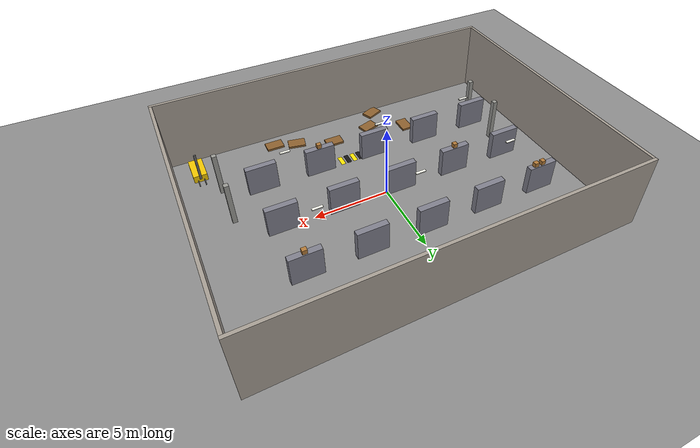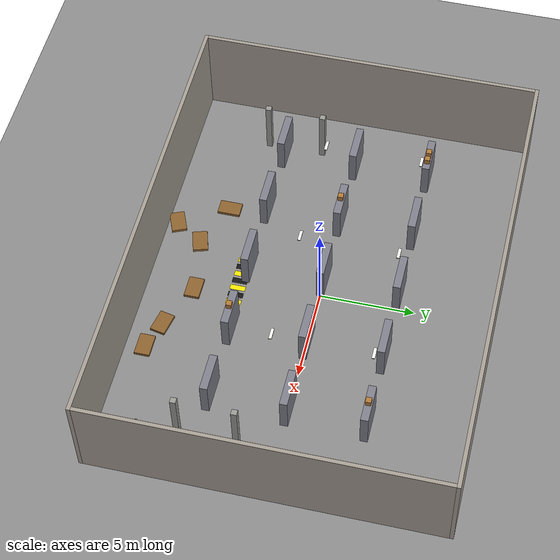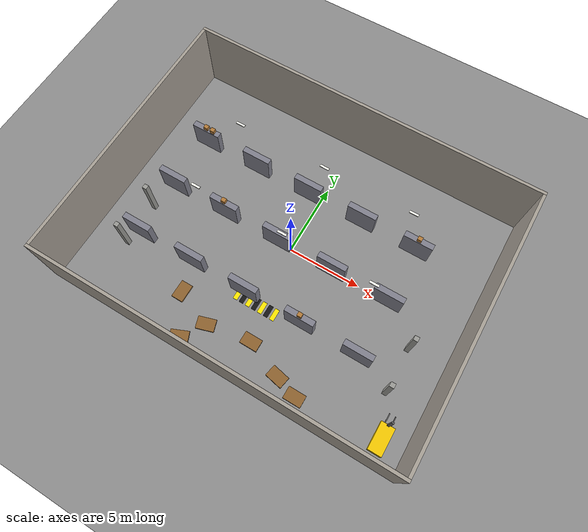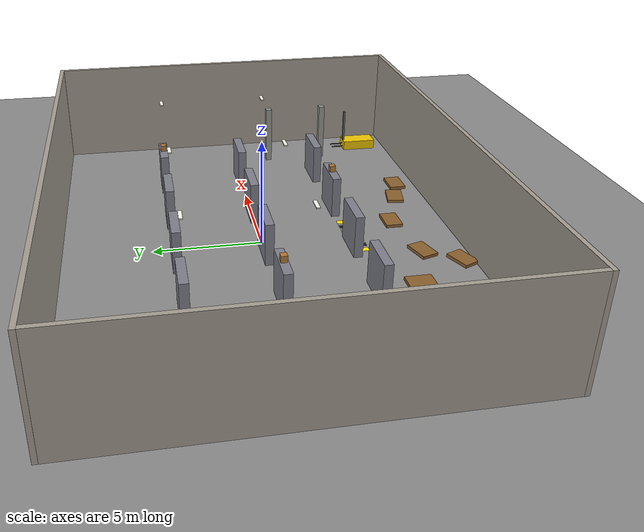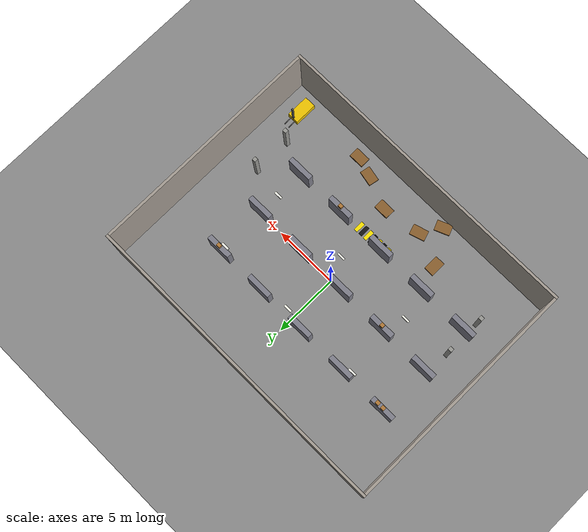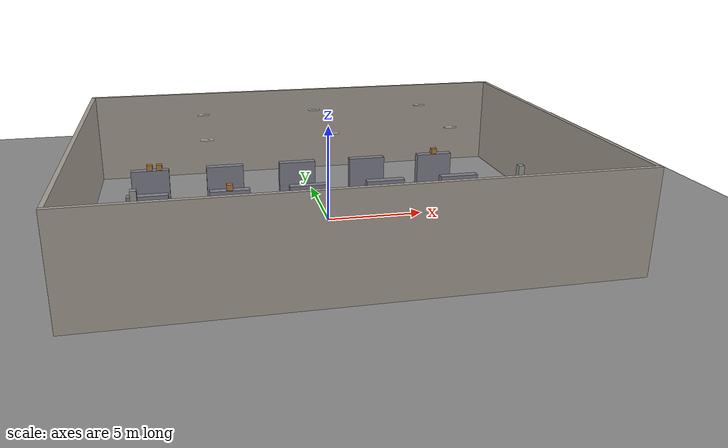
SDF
<sdf version="1.10">
 <world name="warehouse">
  <physics name="default_physics" default="true" type="ode">
   <max_step_size>0.001</max_step_size>
   <real_time_factor>1.0</real_time_factor>
   <real_time_update_rate>1000</real_time_update_rate>
  </physics>
  <plugin filename="gz-sim-physics-system" name="gz::sim::systems::Physics"/>
  <plugin filename="gz-sim-sensors-system" name="gz::sim::systems::Sensors">
   <render_engine>ogre2</render_engine>
  </plugin>
  <plugin filename="gz-sim-scene-broadcaster-system" name="gz::sim::systems::SceneBroadcaster"/>
  <plugin filename="gz-sim-user-commands-system" name="gz::sim::systems::UserCommands"/>
  <plugin filename="gz-sim-imu-system" name="gz::sim::systems::Imu"/>
  <scene>
   <ambient>0.3 0.3 0.35 1</ambient>
   <background>0.55 0.58 0.62 1</background>
   <shadows>true</shadows>
   <sky><clouds><speed>10</speed></clouds></sky>
  </scene>
  <light name="sun" type="directional">
   <pose>0 0 20 0 0.6 0.8</pose>
   <diffuse>0.85 0.85 0.80 1</diffuse>
   <specular>0.15 0.15 0.15 1</specular>
   <direction>-0.5 0.2 -0.9</direction>
   <attenuation>
    <range>1000</range>
    <constant>0.9</constant>
    <linear>0.01</linear>
    <quadratic>0.001</quadratic>
   </attenuation>
  </light>
  <model name="ground_plane">
   <static>true</static>
   <link name="link">
    <collision name="collision">
     <geometry><plane><normal>0 0 1</normal><size>30 25</size></plane></geometry>
     <surface><friction><ode><mu>0.8</mu><mu2>0.8</mu2></ode></friction></surface>
    </collision>
    <visual name="visual">
     <geometry><plane><normal>0 0 1</normal><size>30 25</size></plane></geometry>
     <material>
      <ambient>0.45 0.45 0.45 1</ambient>
      <diffuse>0.55 0.55 0.55 1</diffuse>
      <specular>0.05 0.05 0.05 1</specular>
     </material>
    </visual>
   </link>
  </model>
  <model name="wall_north">
   <static>true</static>
   <pose>0 9.1 2.5 0 0 0</pose>
   <link name="link">
    <collision name="col"><geometry><box><size>24.4 0.2 5.0</size></box></geometry></collision>
    <visual name="vis">
     <geometry><box><size>24.4 0.2 5.0</size></box></geometry>
     <material><ambient>0.5 0.48 0.45 1</ambient><diffuse>0.65 0.62 0.58 1</diffuse></material>
    </visual>
   </link>
  </model>
  <model name="wall_south">
   <static>true</static>
   <pose>0 -9.1 2.5 0 0 0</pose>
   <link name="link">
    <collision name="col"><geometry><box><size>24.4 0.2 5.0</size></box></geometry></collision>
    <visual name="vis">
     <geometry><box><size>24.4 0.2 5.0</size></box></geometry>
     <material><ambient>0.5 0.48 0.45 1</ambient><diffuse>0.65 0.62 0.58 1</diffuse></material>
    </visual>
   </link>
  </model>
  <model name="wall_east">
   <static>true</static>
   <pose>12.1 0 2.5 0 0 0</pose>
   <link name="link">
    <collision name="col"><geometry><box><size>0.2 18.0 5.0</size></box></geometry></collision>
    <visual name="vis">
     <geometry><box><size>0.2 18.0 5.0</size></box></geometry>
     <material><ambient>0.5 0.48 0.45 1</ambient><diffuse>0.65 0.62 0.58 1</diffuse></material>
    </visual>
   </link>
  </model>
  <model name="wall_west">
   <static>true</static>
   <pose>-12.1 0 2.5 0 0 0</pose>
   <link name="link">
    <collision name="col"><geometry><box><size>0.2 18.0 5.0</size></box></geometry></collision>
    <visual name="vis">
     <geometry><box><size>0.2 18.0 5.0</size></box></geometry>
     <material><ambient>0.5 0.48 0.45 1</ambient><diffuse>0.65 0.62 0.58 1</diffuse></material>
    </visual>
   </link>
  </model>
  <model name="shelf_r1_0">
   <static>true</static>
   <pose>-9 4.0 1.0 0 0 0</pose>
   <link name="l">
    <collision name="c"><geometry><box><size>2.0 0.4 2.0</size></box></geometry></collision>
    <visual name="v">
     <geometry><box><size>2.0 0.4 2.0</size></box></geometry>
     <material>
      <ambient>0.35 0.35 0.38 1</ambient>
      <diffuse>0.50 0.50 0.55 1</diffuse>
      <specular>0.3 0.3 0.3 1</specular>
     </material>
    </visual>
   </link>
  </model>
  <model name="shelf_r1_1">
   <static>true</static>
   <pose>-5 4.0 1.0 0 0 0</pose>
   <link name="l">
    <collision name="c"><geometry><box><size>2.0 0.4 2.0</size></box></geometry></collision>
    <visual name="v">
     <geometry><box><size>2.0 0.4 2.0</size></box></geometry>
     <material>
      <ambient>0.35 0.35 0.38 1</ambient>
      <diffuse>0.50 0.50 0.55 1</diffuse>
      <specular>0.3 0.3 0.3 1</specular>
     </material>
    </visual>
   </link>
  </model>
  <model name="shelf_r1_2">
   <static>true</static>
   <pose>-1 4.0 1.0 0 0 0</pose>
   <link name="l">
    <collision name="c"><geometry><box><size>2.0 0.4 2.0</size></box></geometry></collision>
    <visual name="v">
     <geometry><box><size>2.0 0.4 2.0</size></box></geometry>
     <material>
      <ambient>0.35 0.35 0.38 1</ambient>
      <diffuse>0.50 0.50 0.55 1</diffuse>
      <specular>0.3 0.3 0.3 1</specular>
     </material>
    </visual>
   </link>
  </model>
  <model name="shelf_r1_3">
   <static>true</static>
   <pose>3 4.0 1.0 0 0 0</pose>
   <link name="l">
    <collision name="c"><geometry><box><size>2.0 0.4 2.0</size></box></geometry></collision>
    <visual name="v">
     <geometry><box><size>2.0 0.4 2.0</size></box></geometry>
     <material>
      <ambient>0.35 0.35 0.38 1</ambient>
      <diffuse>0.50 0.50 0.55 1</diffuse>
      <specular>0.3 0.3 0.3 1</specular>
     </material>
    </visual>
   </link>
  </model>
  <model name="shelf_r1_4">
   <static>true</static>
   <pose>7 4.0 1.0 0 0 0</pose>
   <link name="l">
    <collision name="c"><geometry><box><size>2.0 0.4 2.0</size></box></geometry></collision>
    <visual name="v">
     <geometry><box><size>2.0 0.4 2.0</size></box></geometry>
     <material>
      <ambient>0.35 0.35 0.38 1</ambient>
      <diffuse>0.50 0.50 0.55 1</diffuse>
      <specular>0.3 0.3 0.3 1</specular>
     </material>
    </visual>
   </link>
  </model>
  <model name="shelf_r2_0">
   <static>true</static>
   <pose>-9 0.0 1.0 0 0 0</pose>
   <link name="l">
    <collision name="c"><geometry><box><size>2.0 0.4 2.0</size></box></geometry></collision>
    <visual name="v">
     <geometry><box><size>2.0 0.4 2.0</size></box></geometry>
     <material>
      <ambient>0.35 0.35 0.38 1</ambient>
      <diffuse>0.50 0.50 0.55 1</diffuse>
      <specular>0.3 0.3 0.3 1</specular>
     </material>
    </visual>
   </link>
  </model>
  <model name="shelf_r2_1">
   <static>true</static>
   <pose>-5 0.0 1.0 0 0 0</pose>
   <link name="l">
    <collision name="c"><geometry><box><size>2.0 0.4 2.0</size></box></geometry></collision>
    <visual name="v">
     <geometry><box><size>2.0 0.4 2.0</size></box></geometry>
     <material>
      <ambient>0.35 0.35 0.38 1</ambient>
      <diffuse>0.50 0.50 0.55 1</diffuse>
      <specular>0.3 0.3 0.3 1</specular>
     </material>
    </visual>
   </link>
  </model>
  <model name="shelf_r2_2">
   <static>true</static>
   <pose>-1 0.0 1.0 0 0 0</pose>
   <link name="l">
    <collision name="c"><geometry><box><size>2.0 0.4 2.0</size></box></geometry></collision>
    <visual name="v">
     <geometry><box><size>2.0 0.4 2.0</size></box></geometry>
     <material>
      <ambient>0.35 0.35 0.38 1</ambient>
      <diffuse>0.50 0.50 0.55 1</diffuse>
      <specular>0.3 0.3 0.3 1</specular>
     </material>
    </visual>
   </link>
  </model>
  <model name="shelf_r2_3">
   <static>true</static>
   <pose>3 0.0 1.0 0 0 0</pose>
   <link name="l">
    <collision name="c"><geometry><box><size>2.0 0.4 2.0</size></box></geometry></collision>
    <visual name="v">
     <geometry><box><size>2.0 0.4 2.0</size></box></geometry>
     <material>
      <ambient>0.35 0.35 0.38 1</ambient>
      <diffuse>0.50 0.50 0.55 1</diffuse>
      <specular>0.3 0.3 0.3 1</specular>
     </material>
    </visual>
   </link>
  </model>
  <model name="shelf_r2_4">
   <static>true</static>
   <pose>7 0.0 1.0 0 0 0</pose>
   <link name="l">
    <collision name="c"><geometry><box><size>2.0 0.4 2.0</size></box></geometry></collision>
    <visual name="v">
     <geometry><box><size>2.0 0.4 2.0</size></box></geometry>
     <material>
      <ambient>0.35 0.35 0.38 1</ambient>
      <diffuse>0.50 0.50 0.55 1</diffuse>
      <specular>0.3 0.3 0.3 1</specular>
     </material>
    </visual>
   </link>
  </model>
  <model name="shelf_r3_0">
   <static>true</static>
   <pose>-9 -4.0 1.0 0 0 0</pose>
   <link name="l">
    <collision name="c"><geometry><box><size>2.0 0.4 2.0</size></box></geometry></collision>
    <visual name="v">
     <geometry><box><size>2.0 0.4 2.0</size></box></geometry>
     <material>
      <ambient>0.35 0.35 0.38 1</ambient>
      <diffuse>0.50 0.50 0.55 1</diffuse>
      <specular>0.3 0.3 0.3 1</specular>
     </material>
    </visual>
   </link>
  </model>
  <model name="shelf_r3_1">
   <static>true</static>
   <pose>-5 -4.0 1.0 0 0 0</pose>
   <link name="l">
    <collision name="c"><geometry><box><size>2.0 0.4 2.0</size></box></geometry></collision>
    <visual name="v">
     <geometry><box><size>2.0 0.4 2.0</size></box></geometry>
     <material>
      <ambient>0.35 0.35 0.38 1</ambient>
      <diffuse>0.50 0.50 0.55 1</diffuse>
      <specular>0.3 0.3 0.3 1</specular>
     </material>
    </visual>
   </link>
  </model>
  <model name="shelf_r3_2">
   <static>true</static>
   <pose>-1 -4.0 1.0 0 0 0</pose>
   <link name="l">
    <collision name="c"><geometry><box><size>2.0 0.4 2.0</size></box></geometry></collision>
    <visual name="v">
     <geometry><box><size>2.0 0.4 2.0</size></box></geometry>
     <material>
      <ambient>0.35 0.35 0.38 1</ambient>
      <diffuse>0.50 0.50 0.55 1</diffuse>
      <specular>0.3 0.3 0.3 1</specular>
     </material>
    </visual>
   </link>
  </model>
  <model name="shelf_r3_3">
   <static>true</static>
   <pose>3 -4.0 1.0 0 0 0</pose>
   <link name="l">
    <collision name="c"><geometry><box><size>2.0 0.4 2.0</size></box></geometry></collision>
    <visual name="v">
     <geometry><box><size>2.0 0.4 2.0</size></box></geometry>
     <material>
      <ambient>0.35 0.35 0.38 1</ambient>
      <diffuse>0.50 0.50 0.55 1</diffuse>
      <specular>0.3 0.3 0.3 1</specular>
     </material>
    </visual>
   </link>
  </model>
  <model name="shelf_r3_4">
   <static>true</static>
   <pose>7 -4.0 1.0 0 0 0</pose>
   <link name="l">
    <collision name="c"><geometry><box><size>2.0 0.4 2.0</size></box></geometry></collision>
    <visual name="v">
     <geometry><box><size>2.0 0.4 2.0</size></box></geometry>
     <material>
      <ambient>0.35 0.35 0.38 1</ambient>
      <diffuse>0.50 0.50 0.55 1</diffuse>
      <specular>0.3 0.3 0.3 1</specular>
     </material>
    </visual>
   </link>
  </model>
  <model name="box_s1">
   <static>true</static>
   <pose>-9 4.0 2.15 0 0 0</pose>
   <link name="l">
    <collision name="c"><geometry><box><size>0.30 0.28 0.30</size></box></geometry></collision>
    <visual name="v">
     <geometry><box><size>0.30 0.28 0.30</size></box></geometry>
     <material><ambient>0.55 0.38 0.18 1</ambient><diffuse>0.70 0.48 0.22 1</diffuse></material>
    </visual>
   </link>
  </model>
  <model name="box_s2">
   <static>true</static>
   <pose>-8.5 4.0 2.15 0 0 0</pose>
   <link name="l">
    <collision name="c"><geometry><box><size>0.30 0.28 0.30</size></box></geometry></collision>
    <visual name="v">
     <geometry><box><size>0.30 0.28 0.30</size></box></geometry>
     <material><ambient>0.55 0.38 0.18 1</ambient><diffuse>0.70 0.48 0.22 1</diffuse></material>
    </visual>
   </link>
  </model>
  <model name="box_s3">
   <static>true</static>
   <pose>-5 0.0 2.15 0 0 0</pose>
   <link name="l">
    <collision name="c"><geometry><box><size>0.30 0.28 0.30</size></box></geometry></collision>
    <visual name="v">
     <geometry><box><size>0.30 0.28 0.30</size></box></geometry>
     <material><ambient>0.55 0.38 0.18 1</ambient><diffuse>0.70 0.48 0.22 1</diffuse></material>
    </visual>
   </link>
  </model>
  <model name="box_s4">
   <static>true</static>
   <pose>3 -4.0 2.15 0 0 0</pose>
   <link name="l">
    <collision name="c"><geometry><box><size>0.30 0.28 0.30</size></box></geometry></collision>
    <visual name="v">
     <geometry><box><size>0.30 0.28 0.30</size></box></geometry>
     <material><ambient>0.55 0.38 0.18 1</ambient><diffuse>0.70 0.48 0.22 1</diffuse></material>
    </visual>
   </link>
  </model>
  <model name="box_s5">
   <static>true</static>
   <pose>7 4.0 2.15 0 0 0</pose>
   <link name="l">
    <collision name="c"><geometry><box><size>0.30 0.28 0.30</size></box></geometry></collision>
    <visual name="v">
     <geometry><box><size>0.30 0.28 0.30</size></box></geometry>
     <material><ambient>0.55 0.38 0.18 1</ambient><diffuse>0.70 0.48 0.22 1</diffuse></material>
    </visual>
   </link>
  </model>
  <model name="pallet_0">
   <static>true</static>
   <pose>1.0 -6.5 0.075 0 0 0</pose>
   <link name="l">
    <collision name="c"><geometry><box><size>1.2 0.8 0.15</size></box></geometry></collision>
    <visual name="v">
     <geometry><box><size>1.2 0.8 0.15</size></box></geometry>
     <material><ambient>0.42 0.28 0.12 1</ambient><diffuse>0.55 0.38 0.18 1</diffuse></material>
    </visual>
   </link>
  </model>
  <model name="pallet_1">
   <static>true</static>
   <pose>-2.0 -7.0 0.075 0 0 0.3</pose>
   <link name="l">
    <collision name="c"><geometry><box><size>1.2 0.8 0.15</size></box></geometry></collision>
    <visual name="v">
     <geometry><box><size>1.2 0.8 0.15</size></box></geometry>
     <material><ambient>0.42 0.28 0.12 1</ambient><diffuse>0.55 0.38 0.18 1</diffuse></material>
    </visual>
   </link>
  </model>
  <model name="pallet_2">
   <static>true</static>
   <pose>3.5 -7.5 0.075 0 0 -0.2</pose>
   <link name="l">
    <collision name="c"><geometry><box><size>1.2 0.8 0.15</size></box></geometry></collision>
    <visual name="v">
     <geometry><box><size>1.2 0.8 0.15</size></box></geometry>
     <material><ambient>0.42 0.28 0.12 1</ambient><diffuse>0.55 0.38 0.18 1</diffuse></material>
    </visual>
   </link>
  </model>
  <model name="pallet_3">
   <static>true</static>
   <pose>-4.5 -6.0 0.075 0 0 1.57</pose>
   <link name="l">
    <collision name="c"><geometry><box><size>1.2 0.8 0.15</size></box></geometry></collision>
    <visual name="v">
     <geometry><box><size>1.2 0.8 0.15</size></box></geometry>
     <material><ambient>0.42 0.28 0.12 1</ambient><diffuse>0.55 0.38 0.18 1</diffuse></material>
    </visual>
   </link>
  </model>
  <model name="pallet_4">
   <static>true</static>
   <pose>5.0 -8.0 0.075 0 0 0</pose>
   <link name="l">
    <collision name="c"><geometry><box><size>1.2 0.8 0.15</size></box></geometry></collision>
    <visual name="v">
     <geometry><box><size>1.2 0.8 0.15</size></box></geometry>
     <material><ambient>0.42 0.28 0.12 1</ambient><diffuse>0.55 0.38 0.18 1</diffuse></material>
    </visual>
   </link>
  </model>
  <model name="pallet_5">
   <static>true</static>
   <pose>-3.0 -8.5 0.075 0 0 0.4</pose>
   <link name="l">
    <collision name="c"><geometry><box><size>1.2 0.8 0.15</size></box></geometry></collision>
    <visual name="v">
     <geometry><box><size>1.2 0.8 0.15</size></box></geometry>
     <material><ambient>0.42 0.28 0.12 1</ambient><diffuse>0.55 0.38 0.18 1</diffuse></material>
    </visual>
   </link>
  </model>
  <model name="pillar_0">
   <static>true</static>
   <pose>9.5 -5.0 1.5 0 0 0</pose>
   <link name="l">
    <collision name="c"><geometry><box><size>0.3 0.3 3.0</size></box></geometry></collision>
    <visual name="v">
     <geometry><box><size>0.3 0.3 3.0</size></box></geometry>
     <material><ambient>0.48 0.48 0.46 1</ambient><diffuse>0.60 0.60 0.58 1</diffuse></material>
    </visual>
   </link>
  </model>
  <model name="pillar_1">
   <static>true</static>
   <pose>9.5 -2.0 1.5 0 0 0</pose>
   <link name="l">
    <collision name="c"><geometry><box><size>0.3 0.3 3.0</size></box></geometry></collision>
    <visual name="v">
     <geometry><box><size>0.3 0.3 3.0</size></box></geometry>
     <material><ambient>0.48 0.48 0.46 1</ambient><diffuse>0.60 0.60 0.58 1</diffuse></material>
    </visual>
   </link>
  </model>
  <model name="pillar_2">
   <static>true</static>
   <pose>-9.5 -5.0 1.5 0 0 0</pose>
   <link name="l">
    <collision name="c"><geometry><box><size>0.3 0.3 3.0</size></box></geometry></collision>
    <visual name="v">
     <geometry><box><size>0.3 0.3 3.0</size></box></geometry>
     <material><ambient>0.48 0.48 0.46 1</ambient><diffuse>0.60 0.60 0.58 1</diffuse></material>
    </visual>
   </link>
  </model>
  <model name="pillar_3">
   <static>true</static>
   <pose>-9.5 -2.0 1.5 0 0 0</pose>
   <link name="l">
    <collision name="c"><geometry><box><size>0.3 0.3 3.0</size></box></geometry></collision>
    <visual name="v">
     <geometry><box><size>0.3 0.3 3.0</size></box></geometry>
     <material><ambient>0.48 0.48 0.46 1</ambient><diffuse>0.60 0.60 0.58 1</diffuse></material>
    </visual>
   </link>
  </model>
  <model name="forklift">
   <static>true</static>
   <pose>10.5 -7.5 0 0 0 1.57</pose>
   <link name="base">
    <collision name="c">
     <geometry><box><size>1.8 0.9 0.5</size></box></geometry>
     <pose>0 0 0.25 0 0 0</pose>
    </collision>
    <visual name="v_base">
     <pose>0 0 0.25 0 0 0</pose>
     <geometry><box><size>1.8 0.9 0.5</size></box></geometry>
     <material><ambient>0.8 0.65 0.0 1</ambient><diffuse>0.95 0.78 0.0 1</diffuse></material>
    </visual>
    <visual name="v_mast">
     <pose>0.85 0 1.2 0 0 0</pose>
     <geometry><box><size>0.1 0.15 2.0</size></box></geometry>
     <material><ambient>0.3 0.3 0.3 1</ambient><diffuse>0.4 0.4 0.4 1</diffuse></material>
    </visual>
    <visual name="v_fork_l">
     <pose>1.1 0.2 0.15 0 0 0</pose>
     <geometry><box><size>0.9 0.06 0.04</size></box></geometry>
     <material><ambient>0.25 0.25 0.25 1</ambient><diffuse>0.35 0.35 0.35 1</diffuse></material>
    </visual>
    <visual name="v_fork_r">
     <pose>1.1 -0.2 0.15 0 0 0</pose>
     <geometry><box><size>0.9 0.06 0.04</size></box></geometry>
     <material><ambient>0.25 0.25 0.25 1</ambient><diffuse>0.35 0.35 0.35 1</diffuse></material>
    </visual>
   </link>
  </model>
  <model name="fixture_0">
   <static>true</static>
   <pose>0 4.0 4.9 0 0 0</pose>
   <link name="l">
    <visual name="v">
     <geometry><box><size>0.6 0.15 0.05</size></box></geometry>
     <material>
      <ambient>0.95 0.95 0.92 1</ambient>
      <diffuse>1.0 1.0 0.95 1</diffuse>
      <emissive>0.8 0.8 0.75 1</emissive>
     </material>
    </visual>
   </link>
  </model>
  <model name="fixture_1">
   <static>true</static>
   <pose>-6 4.0 4.9 0 0 0</pose>
   <link name="l">
    <visual name="v">
     <geometry><box><size>0.6 0.15 0.05</size></box></geometry>
     <material>
      <ambient>0.95 0.95 0.92 1</ambient>
      <diffuse>1.0 1.0 0.95 1</diffuse>
      <emissive>0.8 0.8 0.75 1</emissive>
     </material>
    </visual>
   </link>
  </model>
  <model name="fixture_2">
   <static>true</static>
   <pose>6 4.0 4.9 0 0 0</pose>
   <link name="l">
    <visual name="v">
     <geometry><box><size>0.6 0.15 0.05</size></box></geometry>
     <material>
      <ambient>0.95 0.95 0.92 1</ambient>
      <diffuse>1.0 1.0 0.95 1</diffuse>
      <emissive>0.8 0.8 0.75 1</emissive>
     </material>
    </visual>
   </link>
  </model>
  <model name="fixture_3">
   <static>true</static>
   <pose>0 -1.0 4.9 0 0 0</pose>
   <link name="l">
    <visual name="v">
     <geometry><box><size>0.6 0.15 0.05</size></box></geometry>
     <material>
      <ambient>0.95 0.95 0.92 1</ambient>
      <diffuse>1.0 1.0 0.95 1</diffuse>
      <emissive>0.8 0.8 0.75 1</emissive>
     </material>
    </visual>
   </link>
  </model>
  <model name="fixture_4">
   <static>true</static>
   <pose>-6 -1.0 4.9 0 0 0</pose>
   <link name="l">
    <visual name="v">
     <geometry><box><size>0.6 0.15 0.05</size></box></geometry>
     <material>
      <ambient>0.95 0.95 0.92 1</ambient>
      <diffuse>1.0 1.0 0.95 1</diffuse>
      <emissive>0.8 0.8 0.75 1</emissive>
     </material>
    </visual>
   </link>
  </model>
  <model name="fixture_5">
   <static>true</static>
   <pose>6 -1.0 4.9 0 0 0</pose>
   <link name="l">
    <visual name="v">
     <geometry><box><size>0.6 0.15 0.05</size></box></geometry>
     <material>
      <ambient>0.95 0.95 0.92 1</ambient>
      <diffuse>1.0 1.0 0.95 1</diffuse>
      <emissive>0.8 0.8 0.75 1</emissive>
     </material>
    </visual>
   </link>
  </model>
  <light name="pl_0" type="point">
   <pose>0  4.0 4.6 0 0 0</pose>
   <diffuse>0.9 0.9 0.85 1</diffuse>
   <specular>0.1 0.1 0.1 1</specular>
   <attenuation>
    <range>12</range>
    <constant>0.4</constant>
    <linear>0.02</linear>
    <quadratic>0.002</quadratic>
   </attenuation>
   <cast_shadows>false</cast_shadows>
  </light>
  <light name="pl_1" type="point">
   <pose>-6 4.0 4.6 0 0 0</pose>
   <diffuse>0.9 0.9 0.85 1</diffuse>
   <specular>0.1 0.1 0.1 1</specular>
   <attenuation>
    <range>12</range>
    <constant>0.4</constant>
    <linear>0.02</linear>
    <quadratic>0.002</quadratic>
   </attenuation>
   <cast_shadows>false</cast_shadows>
  </light>
  <light name="pl_2" type="point">
   <pose>6  4.0 4.6 0 0 0</pose>
   <diffuse>0.9 0.9 0.85 1</diffuse>
   <specular>0.1 0.1 0.1 1</specular>
   <attenuation>
    <range>12</range>
    <constant>0.4</constant>
    <linear>0.02</linear>
    <quadratic>0.002</quadratic>
   </attenuation>
   <cast_shadows>false</cast_shadows>
  </light>
  <light name="pl_3" type="point">
   <pose>0  -1.0 4.6 0 0 0</pose>
   <diffuse>0.9 0.9 0.85 1</diffuse>
   <specular>0.1 0.1 0.1 1</specular>
   <attenuation>
    <range>12</range>
    <constant>0.4</constant>
    <linear>0.02</linear>
    <quadratic>0.002</quadratic>
   </attenuation>
   <cast_shadows>false</cast_shadows>
  </light>
  <light name="pl_4" type="point">
   <pose>-6 -1.0 4.6 0 0 0</pose>
   <diffuse>0.9 0.9 0.85 1</diffuse>
   <specular>0.1 0.1 0.1 1</specular>
   <attenuation>
    <range>12</range>
    <constant>0.4</constant>
    <linear>0.02</linear>
    <quadratic>0.002</quadratic>
   </attenuation>
   <cast_shadows>false</cast_shadows>
  </light>
  <light name="pl_5" type="point">
   <pose>6  -1.0 4.6 0 0 0</pose>
   <diffuse>0.9 0.9 0.85 1</diffuse>
   <specular>0.1 0.1 0.1 1</specular>
   <attenuation>
    <range>12</range>
    <constant>0.4</constant>
    <linear>0.02</linear>
    <quadratic>0.002</quadratic>
   </attenuation>
   <cast_shadows>false</cast_shadows>
  </light>
  <model name="stripe_y0">
   <static>true</static>
   <pose>-1.35 -4.3 0.001 0 0 0</pose>
   <link name="l">
    <visual name="v">
     <geometry><box><size>0.3 0.8 0.002</size></box></geometry>
     <material><ambient>0.9 0.8 0.0 1</ambient><diffuse>1.0 0.9 0.0 1</diffuse></material>
    </visual>
   </link>
  </model>
  <model name="stripe_b0">
   <static>true</static>
   <pose>-0.9 -4.3 0.001 0 0 0</pose>
   <link name="l">
    <visual name="v">
     <geometry><box><size>0.3 0.8 0.002</size></box></geometry>
     <material><ambient>0.05 0.05 0.05 1</ambient><diffuse>0.08 0.08 0.08 1</diffuse></material>
    </visual>
   </link>
  </model>
  <model name="stripe_y1">
   <static>true</static>
   <pose>-0.45 -4.3 0.001 0 0 0</pose>
   <link name="l">
    <visual name="v">
     <geometry><box><size>0.3 0.8 0.002</size></box></geometry>
     <material><ambient>0.9 0.8 0.0 1</ambient><diffuse>1.0 0.9 0.0 1</diffuse></material>
    </visual>
   </link>
  </model>
  <model name="stripe_b1">
   <static>true</static>
   <pose>0.0 -4.3 0.001 0 0 0</pose>
   <link name="l">
    <visual name="v">
     <geometry><box><size>0.3 0.8 0.002</size></box></geometry>
     <material><ambient>0.05 0.05 0.05 1</ambient><diffuse>0.08 0.08 0.08 1</diffuse></material>
    </visual>
   </link>
  </model>
  <model name="stripe_y2">
   <static>true</static>
   <pose>0.45 -4.3 0.001 0 0 0</pose>
   <link name="l">
    <visual name="v">
     <geometry><box><size>0.3 0.8 0.002</size></box></geometry>
     <material><ambient>0.9 0.8 0.0 1</ambient><diffuse>1.0 0.9 0.0 1</diffuse></material>
    </visual>
   </link>
  </model>
  <model name="stripe_b2">
   <static>true</static>
   <pose>0.9 -4.3 0.001 0 0 0</pose>
   <link name="l">
    <visual name="v">
     <geometry><box><size>0.3 0.8 0.002</size></box></geometry>
     <material><ambient>0.05 0.05 0.05 1</ambient><diffuse>0.08 0.08 0.08 1</diffuse></material>
    </visual>
   </link>
  </model>
  <model name="stripe_y3">
   <static>true</static>
   <pose>1.35 -4.3 0.001 0 0 0</pose>
   <link name="l">
    <visual name="v">
     <geometry><box><size>0.3 0.8 0.002</size></box></geometry>
     <material><ambient>0.9 0.8 0.0 1</ambient><diffuse>1.0 0.9 0.0 1</diffuse></material>
    </visual>
   </link>
  </model>
 </world>
</sdf>
